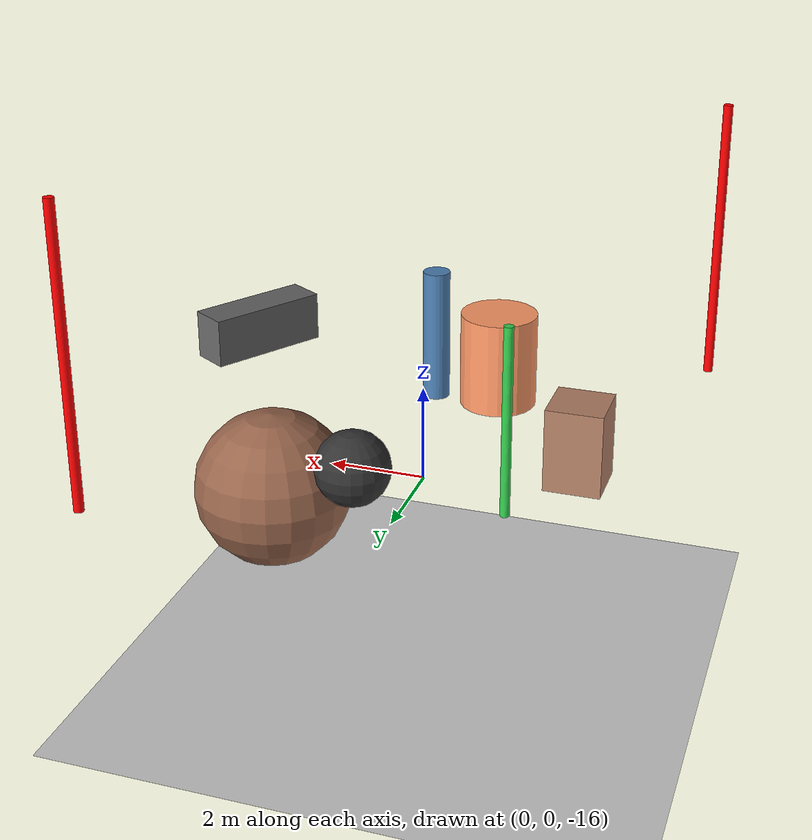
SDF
<?xml version="1.0" ?>
<sdf version="1.4">
  <world name="underwater_world_enhanced">
    <!-- 物理设置 -->
    <physics type="ode">
      <gravity>0 0 -9.81</gravity>
      <ode>
        <solver>
          <type>quick</type>
          <iters>50</iters>
          <sor>1.4</sor>
        </solver>
        <constraints>
          <cfm>0.0</cfm>
          <erp>0.2</erp>
          <contact_max_correcting_vel>100.0</contact_max_correcting_vel>
          <contact_surface_layer>0.0</contact_surface_layer>
        </constraints>
      </ode>
      <real_time_update_rate>1000</real_time_update_rate>
    </physics>

    <!-- 光照设置 -->
    <light type="directional" name="sun">
      <cast_shadows>true</cast_shadows>
      <pose>0 0 10 0 0 0</pose>
      <diffuse>0.8 0.8 0.8 1</diffuse>
      <specular>0.2 0.2 0.2 1</specular>
      <attenuation>
        <range>1000</range>
        <constant>0.9</constant>
        <linear>0.01</linear>
        <quadratic>0.001</quadratic>
      </attenuation>
      <direction>-0.5 0.1 -0.9</direction>
    </light>

    <!-- 海底环境 -->
    <include>
      <uri>model://ground_plane</uri>
      <pose>0 0 -20 0 0 0</pose>
    </include>

    <!-- 🏛️ Landmark 1: 大型岩石群 -->
    <model name="rock_formation_1">
      <pose>2 3 -15 0 0 0</pose>
      <static>true</static>
      <link name="rock_link">
        <visual name="visual">
          <geometry>
            <sphere><radius>1.5</radius></sphere>
          </geometry>
          <material>
            <ambient>0.4 0.3 0.2 1</ambient>
            <diffuse>0.6 0.4 0.3 1</diffuse>
          </material>
        </visual>
        <collision name="collision">
          <geometry>
            <sphere><radius>1.5</radius></sphere>
          </geometry>
        </collision>
      </link>
    </model>

    <!-- 🏛️ Landmark 2: 珊瑚礁结构 -->
    <model name="coral_reef_1">
      <pose>-1 -2 -14 0 0 0</pose>
      <static>true</static>
      <link name="coral_link">
        <visual name="visual">
          <geometry>
            <cylinder><radius>0.8</radius><length>2.0</length></cylinder>
          </geometry>
          <material>
            <ambient>1.0 0.5 0.3 1</ambient>
            <diffuse>1.0 0.6 0.4 1</diffuse>
          </material>
        </visual>
        <collision name="collision">
          <geometry>
            <cylinder><radius>0.8</radius><length>2.0</length></cylinder>
          </geometry>
        </collision>
      </link>
    </model>

    <!-- 🏛️ Landmark 3: 沉船残骸 -->
    <model name="shipwreck">
      <pose>4 -1 -13.5 0 0 45</pose>
      <static>true</static>
      <link name="wreck_link">
        <visual name="visual">
          <geometry>
            <box><size>2.5 0.8 1.0</size></box>
          </geometry>
          <material>
            <ambient>0.3 0.3 0.3 1</ambient>
            <diffuse>0.4 0.4 0.4 1</diffuse>
          </material>
        </visual>
        <collision name="collision">
          <geometry>
            <box><size>2.5 0.8 1.0</size></box>
          </geometry>
        </collision>
      </link>
    </model>

    <!-- 🏛️ Landmark 4: 海底柱状结构 -->
    <model name="sea_pillar_1">
      <pose>1 -4 -14.5 0 0 0</pose>
      <static>true</static>
      <link name="pillar_link">
        <visual name="visual">
          <geometry>
            <cylinder><radius>0.3</radius><length>3.0</length></cylinder>
          </geometry>
          <material>
            <ambient>0.2 0.4 0.6 1</ambient>
            <diffuse>0.3 0.5 0.7 1</diffuse>
          </material>
        </visual>
        <collision name="collision">
          <geometry>
            <cylinder><radius>0.3</radius><length>3.0</length></cylinder>
          </geometry>
        </collision>
      </link>
    </model>

    <!-- 🏛️ Landmark 5: 海藻群 -->
    <model name="seaweed_cluster">
      <pose>-2 1 -14 0 0 0</pose>
      <static>true</static>
      <link name="seaweed_link">
        <visual name="visual">
          <geometry>
            <cylinder><radius>0.1</radius><length>4.0</length></cylinder>
          </geometry>
          <material>
            <ambient>0.1 0.6 0.2 1</ambient>
            <diffuse>0.2 0.8 0.3 1</diffuse>
          </material>
        </visual>
      </link>
    </model>

    <!-- 🏛️ Landmark 6: 大型贝壳 -->
    <model name="giant_shell">
      <pose>3 2 -14.8 0 0 30</pose>
      <static>true</static>
      <link name="shell_link">
        <visual name="visual">
          <geometry>
            <sphere><radius>0.6</radius></sphere>
          </geometry>
          <material>
            <ambient>0.9 0.8 0.7 1</ambient>
            <diffuse>1.0 0.9 0.8 1</diffuse>
          </material>
        </visual>
        <collision name="collision">
          <geometry>
            <sphere><radius>0.6</radius></sphere>
          </geometry>
        </collision>
      </link>
    </model>

    <!-- 🏛️ Landmark 7: 金字塔状岩石 -->
    <model name="pyramid_rock">
      <pose>-3 -1 -15.2 0 0 0</pose>
      <static>true</static>
      <link name="pyramid_link">
        <visual name="visual">
          <geometry>
            <box><size>1.2 1.2 1.8</size></box>
          </geometry>
          <material>
            <ambient>0.5 0.4 0.3 1</ambient>
            <diffuse>0.7 0.5 0.4 1</diffuse>
          </material>
        </visual>
        <collision name="collision">
          <geometry>
            <box><size>1.2 1.2 1.8</size></box>
          </geometry>
        </collision>
      </link>
    </model>

    <!-- 🏛️ Landmark 8: 漂浮的水雷残骸 -->
    <model name="mine_remnant">
      <pose>0 4 -13.8 0 0 0</pose>
      <static>true</static>
      <link name="mine_link">
        <visual name="visual">
          <geometry>
            <sphere><radius>0.7</radius></sphere>
          </geometry>
          <material>
            <ambient>0.1 0.1 0.1 1</ambient>
            <diffuse>0.2 0.2 0.2 1</diffuse>
          </material>
        </visual>
        <collision name="collision">
          <geometry>
            <sphere><radius>0.7</radius></sphere>
          </geometry>
        </collision>
      </link>
    </model>

    <!-- 💡 增强光照 - 模拟阳光穿透 -->
    <light type="point" name="underwater_light_1">
      <pose>0 0 -10 0 0 0</pose>
      <diffuse>0.6 0.7 0.9 1</diffuse>
      <specular>0.3 0.4 0.5 1</specular>
      <attenuation>
        <range>15</range>
        <constant>0.5</constant>
        <linear>0.1</linear>
        <quadratic>0.05</quadratic>
      </attenuation>
    </light>

    <!-- 场景范围提示标记 -->
    <model name="boundary_marker_1">
      <pose>5 5 -12 0 0 0</pose>
      <static>true</static>
      <link name="marker_link">
        <visual name="visual">
          <geometry>
            <cylinder><radius>0.1</radius><length>6.0</length></cylinder>
          </geometry>
          <material>
            <ambient>1.0 0.0 0.0 1</ambient>
            <diffuse>1.0 0.0 0.0 1</diffuse>
          </material>
        </visual>
      </link>
    </model>

    <model name="boundary_marker_2">
      <pose>-5 -5 -12 0 0 0</pose>
      <static>true</static>
      <link name="marker_link">
        <visual name="visual">
          <geometry>
            <cylinder><radius>0.1</radius><length>6.0</length></cylinder>
          </geometry>
          <material>
            <ambient>1.0 0.0 0.0 1</ambient>
            <diffuse>1.0 0.0 0.0 1</diffuse>
          </material>
        </visual>
      </link>
    </model>

  </world>
</sdf>
